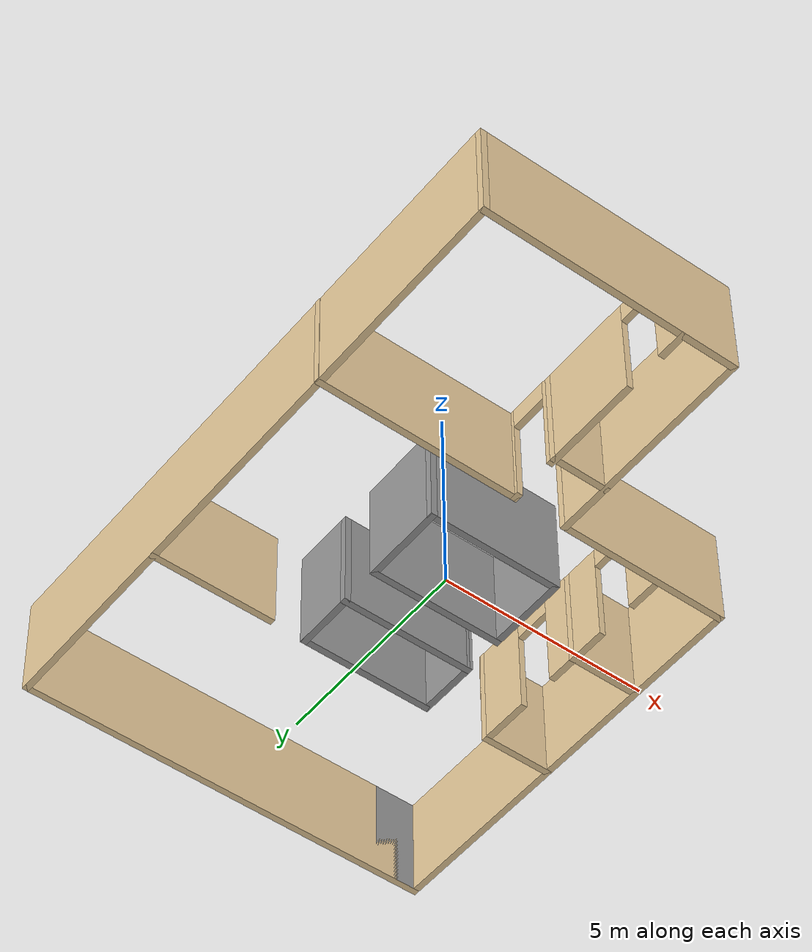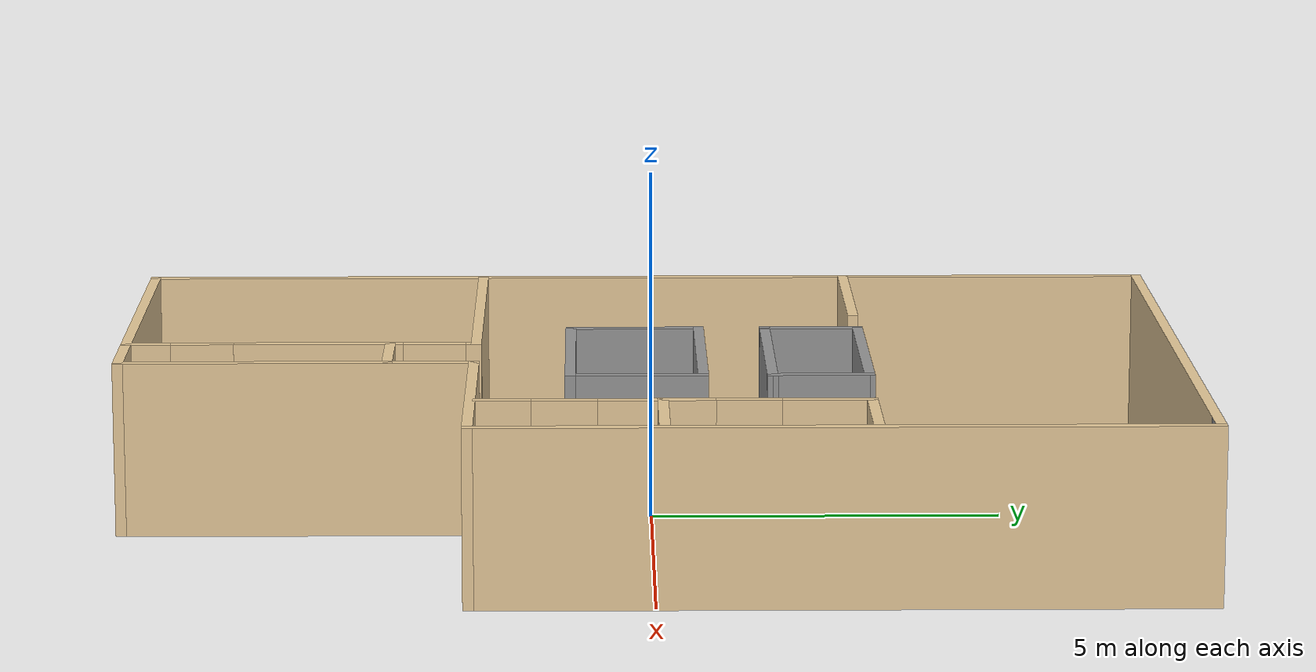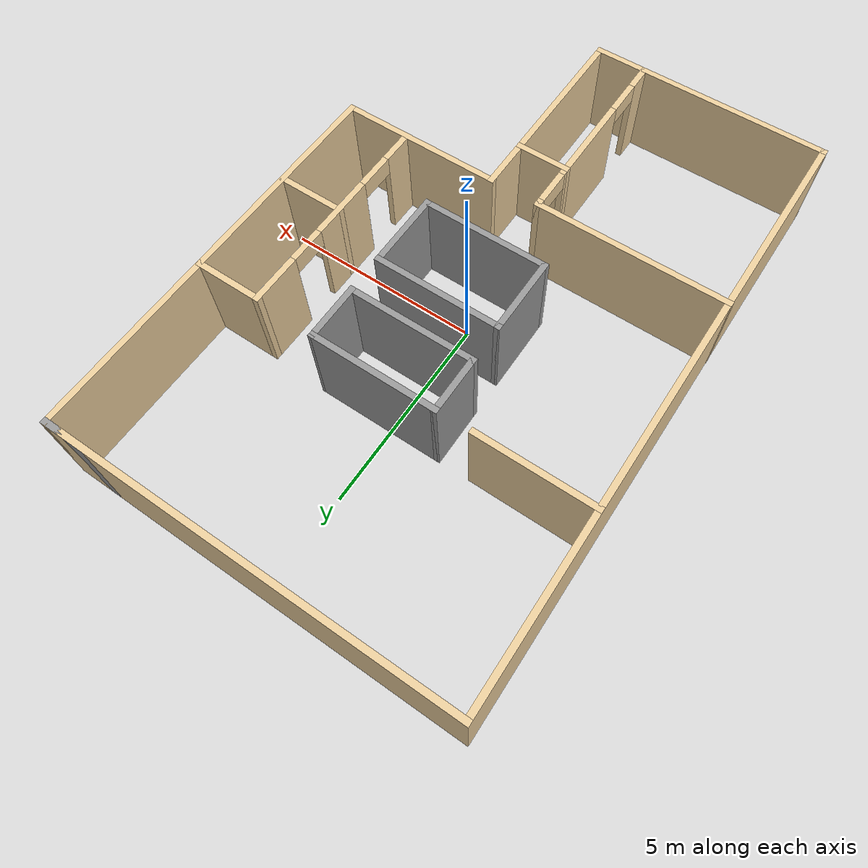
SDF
<?xml version='1.0'?>
<sdf version='1.7'>
  <model name='myhouse'>
    <pose>-0.004 0 0 0 -0 0</pose>
    <link name='Wall_0'>
      <collision name='Wall_0_Collision'>
        <geometry>
          <box>
            <size>10.15 0.15 2.5</size>
          </box>
        </geometry>
        <pose>0 0 1.25 0 -0 0</pose>
      </collision>
      <visual name='Wall_0_Visual'>
        <pose>0 0 1.25 0 -0 0</pose>
        <geometry>
          <box>
            <size>10.15 0.15 2.5</size>
          </box>
        </geometry>
        <material>
          <script>
            <uri>file://media/materials/scripts/gazebo.material</uri>
            <name>Gazebo/Grey</name>
          </script>
          <ambient>0.921569 0.807843 0.615686 1</ambient>
        </material>
        <meta>
          <layer>0</layer>
        </meta>
      </visual>
      <pose>0.004 7.5 0 0 -0 0</pose>
    </link>
    <link name='Wall_10'>
      <collision name='Wall_10_Collision'>
        <geometry>
          <box>
            <size>5.15 0.15 2.5</size>
          </box>
        </geometry>
        <pose>0 0 1.25 0 -0 0</pose>
      </collision>
      <visual name='Wall_10_Visual'>
        <pose>0 0 1.25 0 -0 0</pose>
        <geometry>
          <box>
            <size>5.15 0.15 2.5</size>
          </box>
        </geometry>
        <material>
          <script>
            <uri>file://media/materials/scripts/gazebo.material</uri>
            <name>Gazebo/Grey</name>
          </script>
          <ambient>0.921569 0.807843 0.615686 1</ambient>
        </material>
        <meta>
          <layer>0</layer>
        </meta>
      </visual>
      <pose>1.004 -5 0 0 -0 -1.5708</pose>
    </link>
    <link name='Wall_12'>
      <collision name='Wall_12_Collision'>
        <geometry>
          <box>
            <size>6.15 0.15 2.5</size>
          </box>
        </geometry>
        <pose>0 0 1.25 0 -0 0</pose>
      </collision>
      <visual name='Wall_12_Visual'>
        <pose>0 0 1.25 0 -0 0</pose>
        <geometry>
          <box>
            <size>6.15 0.15 2.5</size>
          </box>
        </geometry>
        <material>
          <script>
            <uri>file://media/materials/scripts/gazebo.material</uri>
            <name>Gazebo/Grey</name>
          </script>
          <ambient>0.921569 0.807843 0.615686 1</ambient>
        </material>
        <meta>
          <layer>0</layer>
        </meta>
      </visual>
      <pose>-1.996 -7.5 0 0 -0 3.14159</pose>
    </link>
    <link name='Wall_14'>
      <collision name='Wall_14_Collision'>
        <geometry>
          <box>
            <size>15.15 0.15 2.5</size>
          </box>
        </geometry>
        <pose>0 0 1.25 0 -0 0</pose>
      </collision>
      <visual name='Wall_14_Visual'>
        <pose>0 0 1.25 0 -0 0</pose>
        <geometry>
          <box>
            <size>15.15 0.15 2.5</size>
          </box>
        </geometry>
        <material>
          <script>
            <uri>file://media/materials/scripts/gazebo.material</uri>
            <name>Gazebo/Grey</name>
          </script>
          <ambient>0.921569 0.807843 0.615686 1</ambient>
        </material>
        <meta>
          <layer>0</layer>
        </meta>
      </visual>
      <pose>-4.996 0 0 0 -0 1.5708</pose>
    </link>
    <link name='Wall_2'>
      <collision name='Wall_2_Collision'>
        <geometry>
          <box>
            <size>1.16 0.15 2.5</size>
          </box>
        </geometry>
        <pose>0 0 1.25 0 -0 0</pose>
      </collision>
      <visual name='Wall_2_Visual'>
        <pose>0 0 1.25 0 -0 0</pose>
        <geometry>
          <box>
            <size>1.16 0.15 2.5</size>
          </box>
        </geometry>
        <material>
          <script>
            <uri>file://media/materials/scripts/gazebo.material</uri>
            <name>Gazebo/Grey</name>
          </script>
          <ambient>1 1 1 1</ambient>
        </material>
        <meta>
          <layer>0</layer>
        </meta>
      </visual>
      <pose>4.499 7.5 0 0 -0 3.14159</pose>
    </link>
    <link name='Wall_20'>
      <collision name='Wall_20_Collision'>
        <geometry>
          <box>
            <size>4.908 0.15 2.5</size>
          </box>
        </geometry>
        <pose>0 0 1.25 0 -0 0</pose>
      </collision>
      <visual name='Wall_20_Visual'>
        <pose>0 0 1.25 0 -0 0</pose>
        <geometry>
          <box>
            <size>4.908 0.15 2.5</size>
          </box>
        </geometry>
        <material>
          <script>
            <uri>file://media/materials/scripts/gazebo.material</uri>
            <name>Gazebo/Grey</name>
          </script>
          <ambient>0.921569 0.807843 0.615686 1</ambient>
        </material>
        <meta>
          <layer>0</layer>
        </meta>
      </visual>
      <pose>-2.625 -2.495 0 0 -0 0</pose>
    </link>
    <link name='Wall_24'>
      <pose>-0.246 -4.9975 0 0 -0 -1.5708</pose>
      <visual name='Wall_24_Visual_0'>
        <pose>-2.46613 0 1.25 0 -0 0</pose>
        <geometry>
          <box>
            <size>0.22274 0.15 2.5</size>
          </box>
        </geometry>
        <material>
          <script>
            <uri>file://media/materials/scripts/gazebo.material</uri>
            <name>Gazebo/Grey</name>
          </script>
          <ambient>0.921569 0.807843 0.615686 1</ambient>
        </material>
        <meta>
          <layer>0</layer>
        </meta>
      </visual>
      <collision name='Wall_24_Collision_0'>
        <geometry>
          <box>
            <size>0.22274 0.15 2.5</size>
          </box>
        </geometry>
        <pose>-2.46613 0 1.25 0 -0 0</pose>
      </collision>
      <visual name='Wall_24_Visual_1'>
        <pose>-0.244516 0 1.25 0 -0 0</pose>
        <geometry>
          <box>
            <size>2.42049 0.15 2.5</size>
          </box>
        </geometry>
        <material>
          <script>
            <uri>file://media/materials/scripts/gazebo.material</uri>
            <name>Gazebo/Grey</name>
          </script>
          <ambient>0.921569 0.807843 0.615686 1</ambient>
        </material>
        <meta>
          <layer>0</layer>
        </meta>
      </visual>
      <collision name='Wall_24_Collision_1'>
        <geometry>
          <box>
            <size>2.42049 0.15 2.5</size>
          </box>
        </geometry>
        <pose>-0.244516 0 1.25 0 -0 0</pose>
      </collision>
      <visual name='Wall_24_Visual_2'>
        <pose>2.22161 0 1.25 0 -0 0</pose>
        <geometry>
          <box>
            <size>0.711771 0.15 2.5</size>
          </box>
        </geometry>
        <material>
          <script>
            <uri>file://media/materials/scripts/gazebo.material</uri>
            <name>Gazebo/Grey</name>
          </script>
          <ambient>0.921569 0.807843 0.615686 1</ambient>
        </material>
        <meta>
          <layer>0</layer>
        </meta>
      </visual>
      <collision name='Wall_24_Collision_2'>
        <geometry>
          <box>
            <size>0.711771 0.15 2.5</size>
          </box>
        </geometry>
        <pose>2.22161 0 1.25 0 -0 0</pose>
      </collision>
      <visual name='Wall_24_Visual_3'>
        <pose>-1.90476 0 2.25 0 -0 0</pose>
        <geometry>
          <box>
            <size>0.9 0.15 0.5</size>
          </box>
        </geometry>
        <material>
          <script>
            <uri>file://media/materials/scripts/gazebo.material</uri>
            <name>Gazebo/Grey</name>
          </script>
          <ambient>0.921569 0.807843 0.615686 1</ambient>
        </material>
        <meta>
          <layer>0</layer>
        </meta>
      </visual>
      <collision name='Wall_24_Collision_3'>
        <geometry>
          <box>
            <size>0.9 0.15 0.5</size>
          </box>
        </geometry>
        <pose>-1.90476 0 2.25 0 -0 0</pose>
      </collision>
      <visual name='Wall_24_Visual_4'>
        <pose>1.41573 0 2.25 0 -0 0</pose>
        <geometry>
          <box>
            <size>0.9 0.15 0.5</size>
          </box>
        </geometry>
        <material>
          <script>
            <uri>file://media/materials/scripts/gazebo.material</uri>
            <name>Gazebo/Grey</name>
          </script>
          <ambient>0.921569 0.807843 0.615686 1</ambient>
        </material>
        <meta>
          <layer>0</layer>
        </meta>
      </visual>
      <collision name='Wall_24_Collision_4'>
        <geometry>
          <box>
            <size>0.9 0.15 0.5</size>
          </box>
        </geometry>
        <pose>1.41573 0 2.25 0 -0 0</pose>
      </collision>
    </link>
    <link name='Wall_26'>
      <collision name='Wall_26_Collision'>
        <geometry>
          <box>
            <size>1.4 0.15 2.5</size>
          </box>
        </geometry>
        <pose>0 0 1.25 0 -0 0</pose>
      </collision>
      <visual name='Wall_26_Visual'>
        <pose>0 0 1.25 0 -0 0</pose>
        <geometry>
          <box>
            <size>1.4 0.15 2.5</size>
          </box>
        </geometry>
        <material>
          <script>
            <uri>file://media/materials/scripts/gazebo.material</uri>
            <name>Gazebo/Grey</name>
          </script>
          <ambient>0.921569 0.807843 0.615686 1</ambient>
        </material>
        <meta>
          <layer>0</layer>
        </meta>
      </visual>
      <pose>0.379 -3.724 0 0 -0 0</pose>
    </link>
    <link name='Wall_28'>
      <collision name='Wall_28_Collision'>
        <geometry>
          <box>
            <size>3 0.15 2.5</size>
          </box>
        </geometry>
        <pose>0 0 1.25 0 -0 0</pose>
      </collision>
      <visual name='Wall_28_Visual'>
        <pose>0 0 1.25 0 -0 0</pose>
        <geometry>
          <box>
            <size>3 0.15 2.5</size>
          </box>
        </geometry>
        <material>
          <script>
            <uri>file://media/materials/scripts/gazebo.material</uri>
            <name>Gazebo/Grey</name>
          </script>
          <ambient>0.921569 0.807843 0.615686 1</ambient>
        </material>
        <meta>
          <layer>0</layer>
        </meta>
      </visual>
      <pose>-3.565 3 0 0 -0 0</pose>
    </link>
    <link name='Wall_30'>
      <collision name='Wall_30_Collision'>
        <geometry>
          <box>
            <size>3.25 0.15 2.5</size>
          </box>
        </geometry>
        <pose>0 0 1.25 0 -0 0</pose>
      </collision>
      <visual name='Wall_30_Visual'>
        <pose>0 0 1.25 0 -0 0</pose>
        <geometry>
          <box>
            <size>3.25 0.15 2.5</size>
          </box>
        </geometry>
        <material>
          <script>
            <uri>file://media/materials/scripts/gazebo.material</uri>
            <name>Gazebo/Grey</name>
          </script>
          <ambient>0.313726 0.313726 0.313726 1</ambient>
        </material>
        <meta>
          <layer>0</layer>
        </meta>
      </visual>
      <pose>0.304 3.017 0 0 -0 0</pose>
    </link>
    <link name='Wall_31'>
      <collision name='Wall_31_Collision'>
        <geometry>
          <box>
            <size>1.5 0.15 2.5</size>
          </box>
        </geometry>
        <pose>0 0 1.25 0 -0 0</pose>
      </collision>
      <visual name='Wall_31_Visual'>
        <pose>0 0 1.25 0 -0 0</pose>
        <geometry>
          <box>
            <size>1.5 0.15 2.5</size>
          </box>
        </geometry>
        <material>
          <script>
            <uri>file://media/materials/scripts/gazebo.material</uri>
            <name>Gazebo/Grey</name>
          </script>
          <ambient>0.313726 0.313726 0.313726 1</ambient>
        </material>
        <meta>
          <layer>0</layer>
        </meta>
      </visual>
      <pose>1.8565 2.342 0 0 -0 -1.56709</pose>
    </link>
    <link name='Wall_32'>
      <collision name='Wall_32_Collision'>
        <geometry>
          <box>
            <size>3.255 0.15 2.5</size>
          </box>
        </geometry>
        <pose>0 0 1.25 0 -0 0</pose>
      </collision>
      <visual name='Wall_32_Visual'>
        <pose>0 0 1.25 0 -0 0</pose>
        <geometry>
          <box>
            <size>3.255 0.15 2.5</size>
          </box>
        </geometry>
        <material>
          <script>
            <uri>file://media/materials/scripts/gazebo.material</uri>
            <name>Gazebo/Grey</name>
          </script>
          <ambient>0.313726 0.313726 0.313726 1</ambient>
        </material>
        <meta>
          <layer>0</layer>
        </meta>
      </visual>
      <pose>0.3065 1.667 0 0 -0 3.14159</pose>
    </link>
    <link name='Wall_33'>
      <collision name='Wall_33_Collision'>
        <geometry>
          <box>
            <size>1.5 0.15 2.5</size>
          </box>
        </geometry>
        <pose>0 0 1.25 0 -0 0</pose>
      </collision>
      <visual name='Wall_33_Visual'>
        <pose>0 0 1.25 0 -0 0</pose>
        <geometry>
          <box>
            <size>1.5 0.15 2.5</size>
          </box>
        </geometry>
        <material>
          <script>
            <uri>file://media/materials/scripts/gazebo.material</uri>
            <name>Gazebo/Grey</name>
          </script>
          <ambient>0.313726 0.313726 0.313726 1</ambient>
        </material>
        <meta>
          <layer>0</layer>
        </meta>
      </visual>
      <pose>-1.246 2.342 0 0 -0 1.5708</pose>
    </link>
    <link name='Wall_35'>
      <collision name='Wall_35_Collision'>
        <geometry>
          <box>
            <size>3.25 0.15 2.5</size>
          </box>
        </geometry>
        <pose>0 0 1.25 0 -0 0</pose>
      </collision>
      <visual name='Wall_35_Visual'>
        <pose>0 0 1.25 0 -0 0</pose>
        <geometry>
          <box>
            <size>3.25 0.15 2.5</size>
          </box>
        </geometry>
        <material>
          <script>
            <uri>file://media/materials/scripts/gazebo.material</uri>
            <name>Gazebo/Grey</name>
          </script>
          <ambient>0.313726 0.313726 0.313726 1</ambient>
        </material>
        <meta>
          <layer>0</layer>
        </meta>
      </visual>
      <pose>0.304 0.706 0 0 -0 0</pose>
    </link>
    <link name='Wall_36'>
      <collision name='Wall_36_Collision'>
        <geometry>
          <box>
            <size>2 0.15 2.5</size>
          </box>
        </geometry>
        <pose>0 0 1.25 0 -0 0</pose>
      </collision>
      <visual name='Wall_36_Visual'>
        <pose>0 0 1.25 0 -0 0</pose>
        <geometry>
          <box>
            <size>2 0.15 2.5</size>
          </box>
        </geometry>
        <material>
          <script>
            <uri>file://media/materials/scripts/gazebo.material</uri>
            <name>Gazebo/Grey</name>
          </script>
          <ambient>0.313726 0.313726 0.313726 1</ambient>
        </material>
        <meta>
          <layer>0</layer>
        </meta>
      </visual>
      <pose>1.854 -0.219 0 0 -0 -1.5708</pose>
    </link>
    <link name='Wall_37'>
      <collision name='Wall_37_Collision'>
        <geometry>
          <box>
            <size>3.25 0.15 2.5</size>
          </box>
        </geometry>
        <pose>0 0 1.25 0 -0 0</pose>
      </collision>
      <visual name='Wall_37_Visual'>
        <pose>0 0 1.25 0 -0 0</pose>
        <geometry>
          <box>
            <size>3.25 0.15 2.5</size>
          </box>
        </geometry>
        <material>
          <script>
            <uri>file://media/materials/scripts/gazebo.material</uri>
            <name>Gazebo/Grey</name>
          </script>
          <ambient>0.313726 0.313726 0.313726 1</ambient>
        </material>
        <meta>
          <layer>0</layer>
        </meta>
      </visual>
      <pose>0.304 -1.144 0 0 -0 3.14159</pose>
    </link>
    <link name='Wall_38'>
      <collision name='Wall_38_Collision'>
        <geometry>
          <box>
            <size>2 0.15 2.5</size>
          </box>
        </geometry>
        <pose>0 0 1.25 0 -0 0</pose>
      </collision>
      <visual name='Wall_38_Visual'>
        <pose>0 0 1.25 0 -0 0</pose>
        <geometry>
          <box>
            <size>2 0.15 2.5</size>
          </box>
        </geometry>
        <material>
          <script>
            <uri>file://media/materials/scripts/gazebo.material</uri>
            <name>Gazebo/Grey</name>
          </script>
          <ambient>0.313726 0.313726 0.313726 1</ambient>
        </material>
        <meta>
          <layer>0</layer>
        </meta>
      </visual>
      <pose>-1.246 -0.219 0 0 -0 1.5708</pose>
    </link>
    <link name='Wall_40'>
      <collision name='Wall_40_Collision'>
        <geometry>
          <box>
            <size>1.75 0.15 2.5</size>
          </box>
        </geometry>
        <pose>0 0 1.25 0 -0 0</pose>
      </collision>
      <visual name='Wall_40_Visual'>
        <pose>0 0 1.25 0 -0 0</pose>
        <geometry>
          <box>
            <size>1.75 0.15 2.5</size>
          </box>
        </geometry>
        <material>
          <script>
            <uri>file://media/materials/scripts/gazebo.material</uri>
            <name>Gazebo/Grey</name>
          </script>
          <ambient>0.921569 0.807843 0.615686 1</ambient>
        </material>
        <meta>
          <layer>0</layer>
        </meta>
      </visual>
      <pose>4.196 2.963 0 0 -0 3.14159</pose>
    </link>
    <link name='Wall_41'>
      <pose>3.3961 0.288196 0 0 -0 -1.57076</pose>
      <visual name='Wall_41_Visual_0'>
        <pose>-2.10145 0 1.25 0 -0 0</pose>
        <geometry>
          <box>
            <size>1.29711 0.15 2.5</size>
          </box>
        </geometry>
        <material>
          <script>
            <uri>file://media/materials/scripts/gazebo.material</uri>
            <name>Gazebo/Grey</name>
          </script>
          <ambient>0.921569 0.807843 0.615686 1</ambient>
        </material>
        <meta>
          <layer>0</layer>
        </meta>
      </visual>
      <collision name='Wall_41_Collision_0'>
        <geometry>
          <box>
            <size>1.29711 0.15 2.5</size>
          </box>
        </geometry>
        <pose>-2.10145 0 1.25 0 -0 0</pose>
      </collision>
      <visual name='Wall_41_Visual_1'>
        <pose>0.25232 0 1.25 0 -0 0</pose>
        <geometry>
          <box>
            <size>1.61042 0.15 2.5</size>
          </box>
        </geometry>
        <material>
          <script>
            <uri>file://media/materials/scripts/gazebo.material</uri>
            <name>Gazebo/Grey</name>
          </script>
          <ambient>0.921569 0.807843 0.615686 1</ambient>
        </material>
        <meta>
          <layer>0</layer>
        </meta>
      </visual>
      <collision name='Wall_41_Collision_1'>
        <geometry>
          <box>
            <size>1.61042 0.15 2.5</size>
          </box>
        </geometry>
        <pose>0.25232 0 1.25 0 -0 0</pose>
      </collision>
      <visual name='Wall_41_Visual_2'>
        <pose>2.35377 0 1.25 0 -0 0</pose>
        <geometry>
          <box>
            <size>0.792468 0.15 2.5</size>
          </box>
        </geometry>
        <material>
          <script>
            <uri>file://media/materials/scripts/gazebo.material</uri>
            <name>Gazebo/Grey</name>
          </script>
          <ambient>0.921569 0.807843 0.615686 1</ambient>
        </material>
        <meta>
          <layer>0</layer>
        </meta>
      </visual>
      <collision name='Wall_41_Collision_2'>
        <geometry>
          <box>
            <size>0.792468 0.15 2.5</size>
          </box>
        </geometry>
        <pose>2.35377 0 1.25 0 -0 0</pose>
      </collision>
      <visual name='Wall_41_Visual_3'>
        <pose>-1.00289 0 2.25 0 -0 0</pose>
        <geometry>
          <box>
            <size>0.9 0.15 0.5</size>
          </box>
        </geometry>
        <material>
          <script>
            <uri>file://media/materials/scripts/gazebo.material</uri>
            <name>Gazebo/Grey</name>
          </script>
          <ambient>0.921569 0.807843 0.615686 1</ambient>
        </material>
        <meta>
          <layer>0</layer>
        </meta>
      </visual>
      <collision name='Wall_41_Collision_3'>
        <geometry>
          <box>
            <size>0.9 0.15 0.5</size>
          </box>
        </geometry>
        <pose>-1.00289 0 2.25 0 -0 0</pose>
      </collision>
      <visual name='Wall_41_Visual_4'>
        <pose>1.50753 0 2.25 0 -0 0</pose>
        <geometry>
          <box>
            <size>0.9 0.15 0.5</size>
          </box>
        </geometry>
        <material>
          <script>
            <uri>file://media/materials/scripts/gazebo.material</uri>
            <name>Gazebo/Grey</name>
          </script>
          <ambient>0.921569 0.807843 0.615686 1</ambient>
        </material>
        <meta>
          <layer>0</layer>
        </meta>
      </visual>
      <collision name='Wall_41_Collision_4'>
        <geometry>
          <box>
            <size>0.9 0.15 0.5</size>
          </box>
        </geometry>
        <pose>1.50753 0 2.25 0 -0 0</pose>
      </collision>
    </link>
    <link name='Wall_43'>
      <collision name='Wall_43_Collision'>
        <geometry>
          <box>
            <size>1.73003 0.15 2.5</size>
          </box>
        </geometry>
        <pose>0 0 1.25 0 -0 0</pose>
      </collision>
      <visual name='Wall_43_Visual'>
        <pose>0 0 1.25 0 -0 0</pose>
        <geometry>
          <box>
            <size>1.73003 0.15 2.5</size>
          </box>
        </geometry>
        <material>
          <script>
            <uri>file://media/materials/scripts/gazebo.material</uri>
            <name>Gazebo/Grey</name>
          </script>
          <ambient>0.921569 0.807843 0.615686 1</ambient>
        </material>
        <meta>
          <layer>0</layer>
        </meta>
      </visual>
      <pose>4.186 0.121 0 0 -0 0</pose>
    </link>
    <link name='Wall_6'>
      <collision name='Wall_6_Collision'>
        <geometry>
          <box>
            <size>10.15 0.15 2.5</size>
          </box>
        </geometry>
        <pose>0 0 1.25 0 -0 0</pose>
      </collision>
      <visual name='Wall_6_Visual'>
        <pose>0 0 1.25 0 -0 0</pose>
        <geometry>
          <box>
            <size>10.15 0.15 2.5</size>
          </box>
        </geometry>
        <material>
          <script>
            <uri>file://media/materials/scripts/gazebo.material</uri>
            <name>Gazebo/Grey</name>
          </script>
          <ambient>0.921569 0.807843 0.615686 1</ambient>
        </material>
        <meta>
          <layer>0</layer>
        </meta>
      </visual>
      <pose>5.004 2.5 0 0 -0 -1.5708</pose>
    </link>
    <link name='Wall_8'>
      <collision name='Wall_8_Collision'>
        <geometry>
          <box>
            <size>4.15 0.15 2.5</size>
          </box>
        </geometry>
        <pose>0 0 1.25 0 -0 0</pose>
      </collision>
      <visual name='Wall_8_Visual'>
        <pose>0 0 1.25 0 -0 0</pose>
        <geometry>
          <box>
            <size>4.15 0.15 2.5</size>
          </box>
        </geometry>
        <material>
          <script>
            <uri>file://media/materials/scripts/gazebo.material</uri>
            <name>Gazebo/Grey</name>
          </script>
          <ambient>0.921569 0.807843 0.615686 1</ambient>
        </material>
        <meta>
          <layer>0</layer>
        </meta>
      </visual>
      <pose>3.004 -2.5 0 0 -0 3.14159</pose>
    </link>
    <static>1</static>
  </model>
</sdf>
